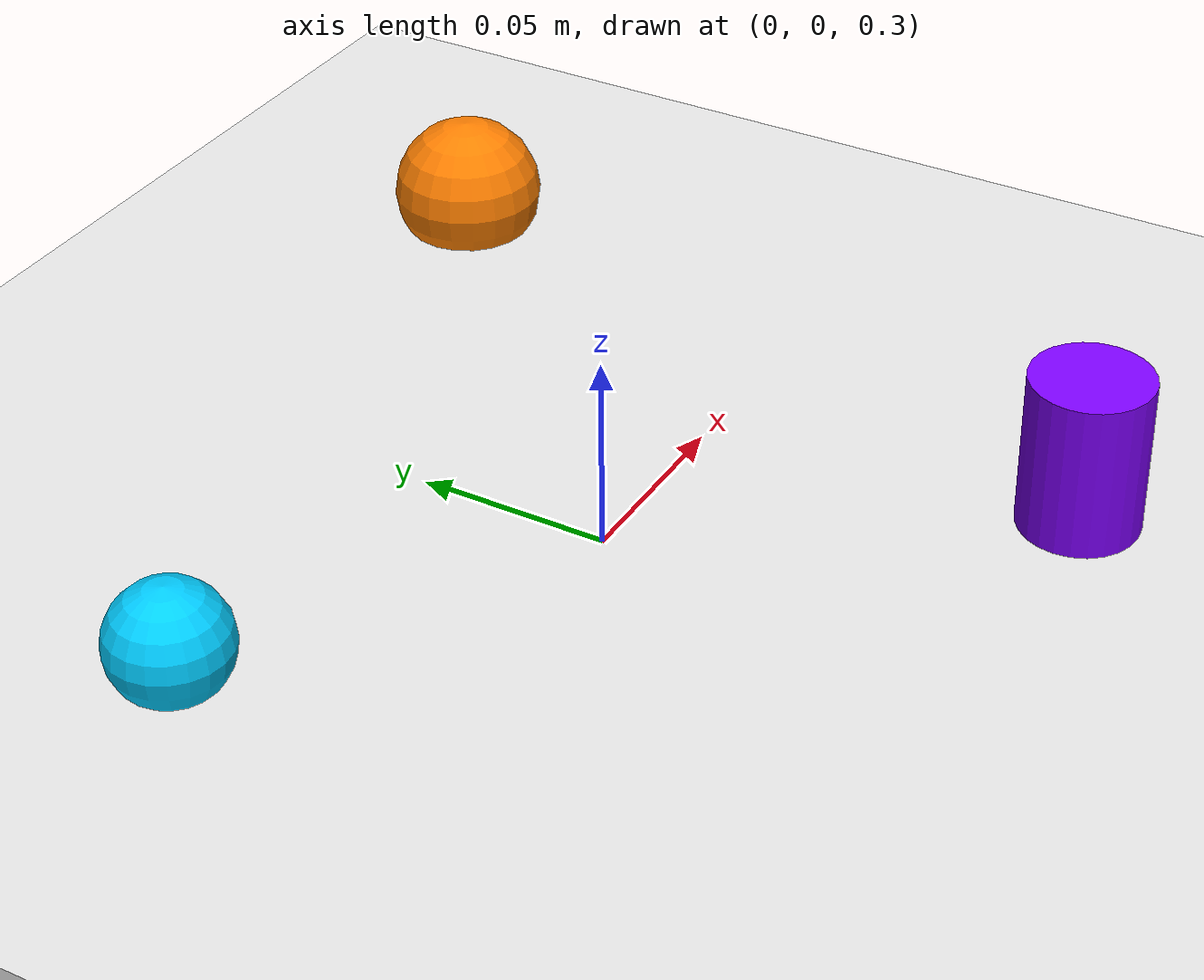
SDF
<?xml version="1.0" ?>
<sdf version="1.6">
  <world name="hand_world">

    <include>
      <uri>model://ground_plane</uri>
    </include>

    <include>
      <uri>model://sun</uri>
    </include>

    <!-- Table surface -->
    <model name="table">
      <static>true</static>
      <link name="table_link">
        <pose>0 0 0.3 0 0 0</pose>
        <collision name="table_collision">
          <geometry>
            <box>
              <size>0.8 0.8 0.02</size>
            </box>
          </geometry>
        </collision>
        <visual name="table_visual">
          <geometry>
            <box>
              <size>0.8 0.8 0.02</size>
            </box>
          </geometry>
          <material>
            <ambient>0.9 0.9 0.9 1</ambient>
            <diffuse>0.9 0.9 0.9 1</diffuse>
          </material>
        </visual>
      </link>
    </model>

    <!-- Small objects for grasping -->
    <model name="ball1">
      <pose>0.1 0.1 0.32 0 0 0</pose>
      <link name="ball_link">
        <collision name="ball_collision">
          <geometry>
            <sphere>
              <radius>0.02</radius>
            </sphere>
          </geometry>
        </collision>
        <visual name="ball_visual">
          <geometry>
            <sphere>
              <radius>0.02</radius>
            </sphere>
          </geometry>
          <material>
            <ambient>1 0.5 0 1</ambient>
            <diffuse>1 0.5 0 1</diffuse>
          </material>
        </visual>
        <inertial>
          <mass>0.05</mass>
          <inertia>
            <ixx>0.0001</ixx>
            <iyy>0.0001</iyy>
            <izz>0.0001</izz>
          </inertia>
        </inertial>
      </link>
    </model>

    <model name="ball2">
      <pose>-0.1 0.05 0.32 0 0 0</pose>
      <link name="ball_link">
        <collision name="ball_collision">
          <geometry>
            <sphere>
              <radius>0.015</radius>
            </sphere>
          </geometry>
        </collision>
        <visual name="ball_visual">
          <geometry>
            <sphere>
              <radius>0.015</radius>
            </sphere>
          </geometry>
          <material>
            <ambient>0 0.8 1 1</ambient>
            <diffuse>0 0.8 1 1</diffuse>
          </material>
        </visual>
        <inertial>
          <mass>0.03</mass>
          <inertia>
            <ixx>0.0001</ixx>
            <iyy>0.0001</iyy>
            <izz>0.0001</izz>
          </inertia>
        </inertial>
      </link>
    </model>

    <!-- Cylinder object -->
    <model name="cylinder1">
      <pose>0.05 -0.1 0.325 0 0 0</pose>
      <link name="cylinder_link">
        <collision name="cylinder_collision">
          <geometry>
            <cylinder>
              <radius>0.015</radius>
              <length>0.05</length>
            </cylinder>
          </geometry>
        </collision>
        <visual name="cylinder_visual">
          <geometry>
            <cylinder>
              <radius>0.015</radius>
              <length>0.05</length>
            </cylinder>
          </geometry>
          <material>
            <ambient>0.5 0 1 1</ambient>
            <diffuse>0.5 0 1 1</diffuse>
          </material>
        </visual>
        <inertial>
          <mass>0.04</mass>
          <inertia>
            <ixx>0.0001</ixx>
            <iyy>0.0001</iyy>
            <izz>0.0001</izz>
          </inertia>
        </inertial>
      </link>
    </model>

    <!-- Physics settings -->
    <physics type="ode">
      <real_time_update_rate>1000</real_time_update_rate>
      <max_step_size>0.001</max_step_size>
      <real_time_factor>1</real_time_factor>
    </physics>

  </world>
</sdf>
